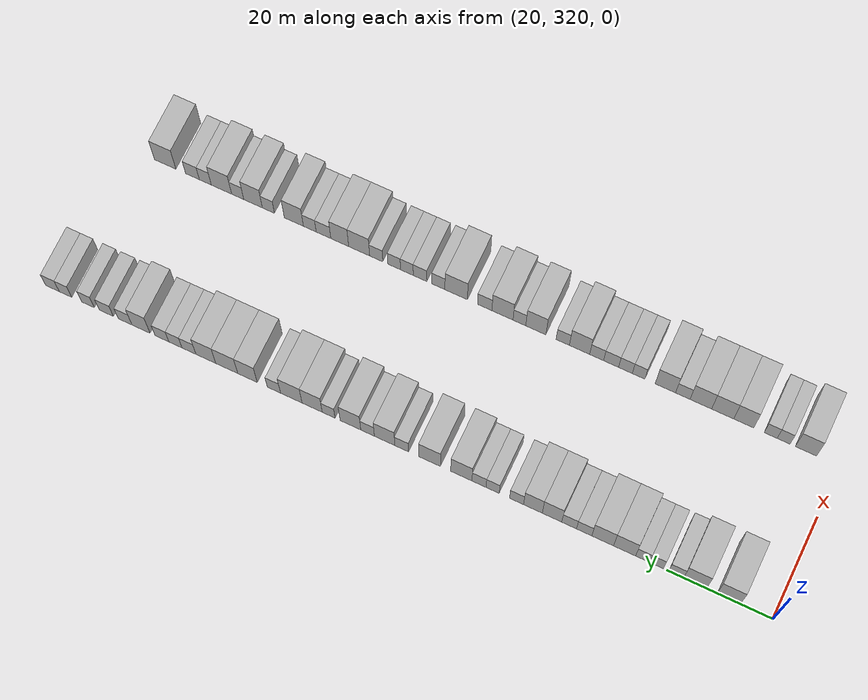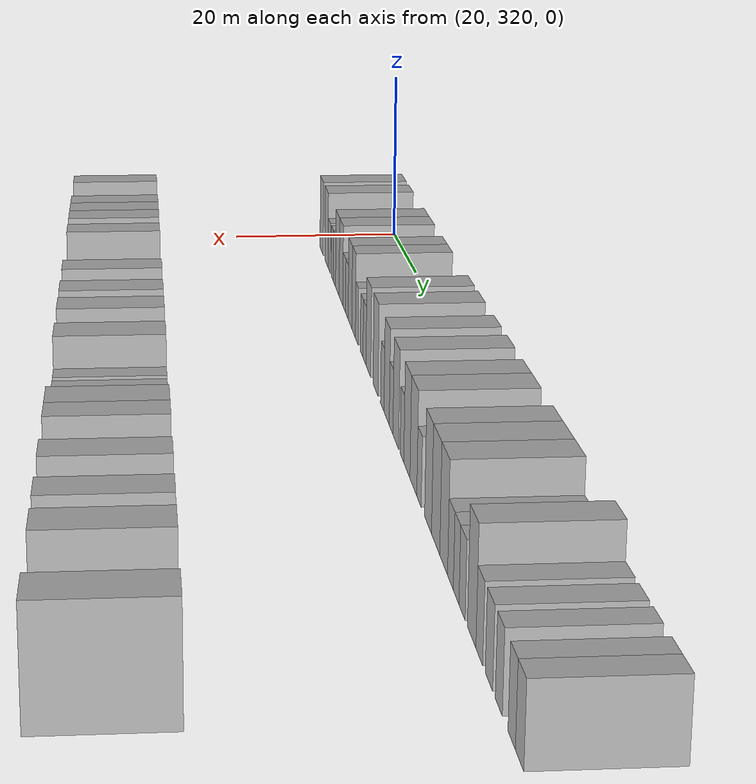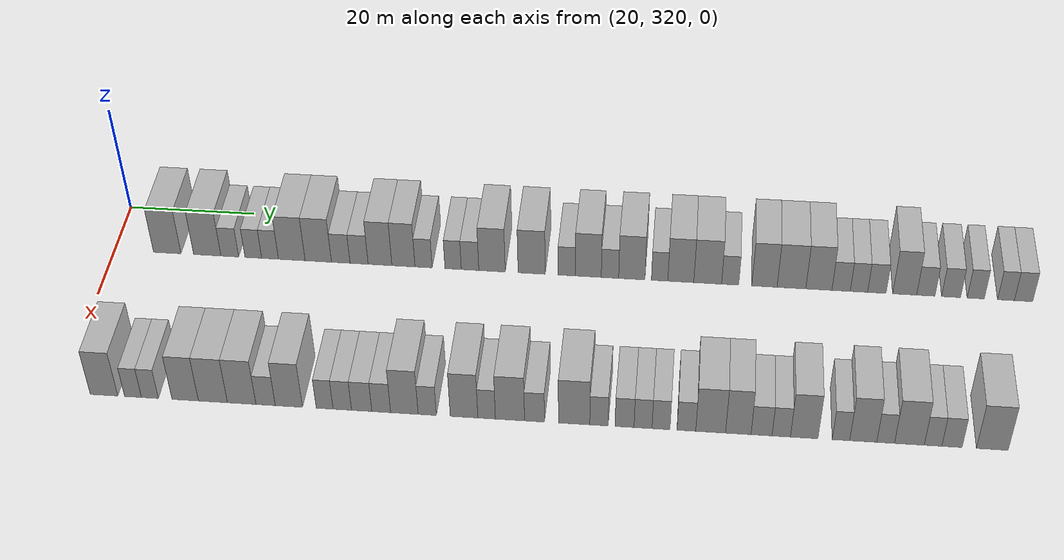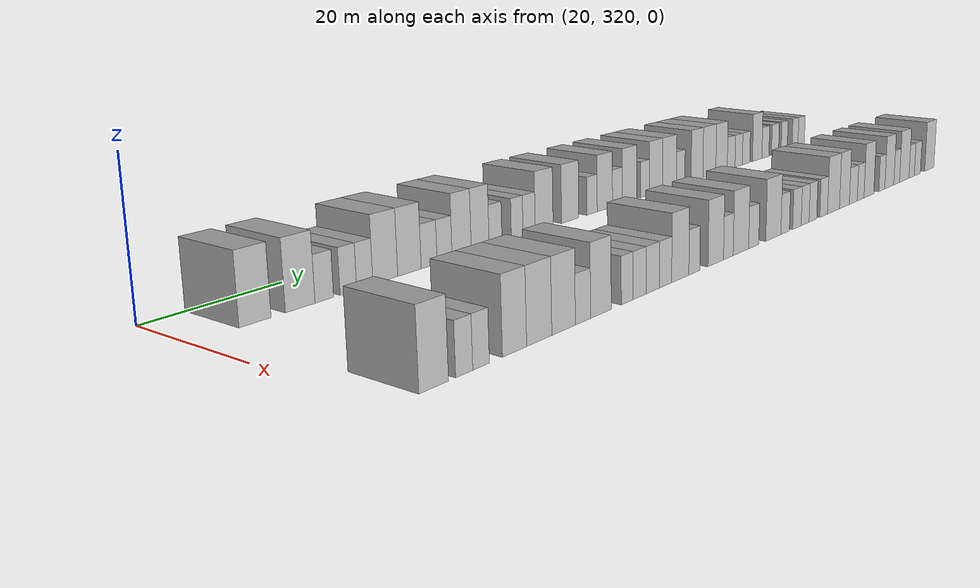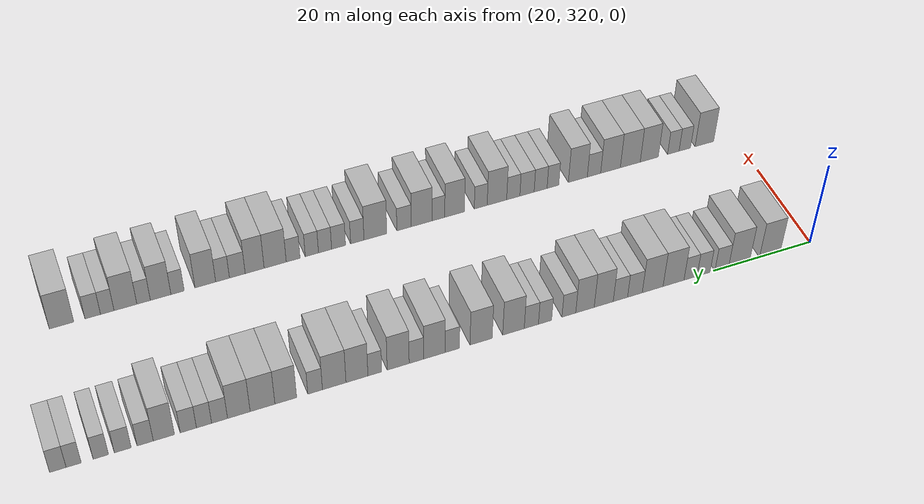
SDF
<sdf version="1.6">
 <world name="default">
  <model name="building_199">
   <static>1</static>
   <pose>25.0000 328.3594 0 0.000000 0.000000 0.000000</pose>
   <link name="link">
    <pose>0 0 4.50 0 0 0</pose>
    <collision name="collision"><geometry><box><size>10.0000 4.3618 9.0000</size></box></geometry></collision>
    <visual name="visual">
     <cast_shadows>0</cast_shadows>
     <geometry><box><size>10.0000 4.3618 9.0000</size></box></geometry>
     <material>
      <script>
       <uri>model://HANNAS_wall/materials/scripts</uri>
       <uri>model://HANNAS_wall/materials/textures</uri>
       <name>vrc/HANNAS_wall</name>
      </script>
     </material>
    </visual>
   </link>
  </model>
  <model name="building_200">
   <static>1</static>
   <pose>25.0000 334.7117 0 0.000000 0.000000 0.000000</pose>
   <link name="link">
    <pose>0 0 4.50 0 0 0</pose>
    <collision name="collision"><geometry><box><size>10.0000 4.3428 9.0000</size></box></geometry></collision>
    <visual name="visual">
     <cast_shadows>0</cast_shadows>
     <geometry><box><size>10.0000 4.3428 9.0000</size></box></geometry>
     <material>
      <script>
       <uri>model://HANNAS_wall/materials/scripts</uri>
       <uri>model://HANNAS_wall/materials/textures</uri>
       <name>vrc/HANNAS_wall</name>
      </script>
     </material>
    </visual>
   </link>
  </model>
  <model name="building_201">
   <static>1</static>
   <pose>25.0000 338.2919 0 0.000000 0.000000 0.000000</pose>
   <link name="link">
    <pose>0 0 3.00 0 0 0</pose>
    <collision name="collision"><geometry><box><size>10.0000 2.8176 6.0000</size></box></geometry></collision>
    <visual name="visual">
     <cast_shadows>0</cast_shadows>
     <geometry><box><size>10.0000 2.8176 6.0000</size></box></geometry>
     <material>
      <script>
       <uri>model://HANNAS_wall/materials/scripts</uri>
       <uri>model://HANNAS_wall/materials/textures</uri>
       <name>vrc/HANNAS_wall</name>
      </script>
     </material>
    </visual>
   </link>
  </model>
  <model name="building_202">
   <static>1</static>
   <pose>25.0000 342.0193 0 0.000000 0.000000 0.000000</pose>
   <link name="link">
    <pose>0 0 3.00 0 0 0</pose>
    <collision name="collision"><geometry><box><size>10.0000 2.6372 6.0000</size></box></geometry></collision>
    <visual name="visual">
     <cast_shadows>0</cast_shadows>
     <geometry><box><size>10.0000 2.6372 6.0000</size></box></geometry>
     <material>
      <script>
       <uri>model://HANNAS_wall/materials/scripts</uri>
       <uri>model://HANNAS_wall/materials/textures</uri>
       <name>vrc/HANNAS_wall</name>
      </script>
     </material>
    </visual>
   </link>
  </model>
  <model name="building_203">
   <static>1</static>
   <pose>25.0000 344.6592 0 0.000000 0.000000 0.000000</pose>
   <link name="link">
    <pose>0 0 3.00 0 0 0</pose>
    <collision name="collision"><geometry><box><size>10.0000 2.6426 6.0000</size></box></geometry></collision>
    <visual name="visual">
     <cast_shadows>0</cast_shadows>
     <geometry><box><size>10.0000 2.6426 6.0000</size></box></geometry>
     <material>
      <script>
       <uri>model://HANNAS_wall/materials/scripts</uri>
       <uri>model://HANNAS_wall/materials/textures</uri>
       <name>vrc/HANNAS_wall</name>
      </script>
     </material>
    </visual>
   </link>
  </model>
  <model name="building_204">
   <static>1</static>
   <pose>25.0000 348.0831 0 0.000000 0.000000 0.000000</pose>
   <link name="link">
    <pose>0 0 4.50 0 0 0</pose>
    <collision name="collision"><geometry><box><size>10.0000 4.2052 9.0000</size></box></geometry></collision>
    <visual name="visual">
     <cast_shadows>0</cast_shadows>
     <geometry><box><size>10.0000 4.2052 9.0000</size></box></geometry>
     <material>
      <script>
       <uri>model://HANNAS_wall/materials/scripts</uri>
       <uri>model://HANNAS_wall/materials/textures</uri>
       <name>vrc/HANNAS_wall</name>
      </script>
     </material>
    </visual>
   </link>
  </model>
  <model name="building_205">
   <static>1</static>
   <pose>25.0000 352.2639 0 0.000000 0.000000 0.000000</pose>
   <link name="link">
    <pose>0 0 4.50 0 0 0</pose>
    <collision name="collision"><geometry><box><size>10.0000 4.1564 9.0000</size></box></geometry></collision>
    <visual name="visual">
     <cast_shadows>0</cast_shadows>
     <geometry><box><size>10.0000 4.1564 9.0000</size></box></geometry>
     <material>
      <script>
       <uri>model://HANNAS_wall/materials/scripts</uri>
       <uri>model://HANNAS_wall/materials/textures</uri>
       <name>vrc/HANNAS_wall</name>
      </script>
     </material>
    </visual>
   </link>
  </model>
  <model name="building_206">
   <static>1</static>
   <pose>25.0000 355.8007 0 0.000000 0.000000 0.000000</pose>
   <link name="link">
    <pose>0 0 3.00 0 0 0</pose>
    <collision name="collision"><geometry><box><size>10.0000 2.9171 6.0000</size></box></geometry></collision>
    <visual name="visual">
     <cast_shadows>0</cast_shadows>
     <geometry><box><size>10.0000 2.9171 6.0000</size></box></geometry>
     <material>
      <script>
       <uri>model://HANNAS_wall/materials/scripts</uri>
       <uri>model://HANNAS_wall/materials/textures</uri>
       <name>vrc/HANNAS_wall</name>
      </script>
     </material>
    </visual>
   </link>
  </model>
  <model name="building_207">
   <static>1</static>
   <pose>25.0000 358.6803 0 0.000000 0.000000 0.000000</pose>
   <link name="link">
    <pose>0 0 3.00 0 0 0</pose>
    <collision name="collision"><geometry><box><size>10.0000 2.8420 6.0000</size></box></geometry></collision>
    <visual name="visual">
     <cast_shadows>0</cast_shadows>
     <geometry><box><size>10.0000 2.8420 6.0000</size></box></geometry>
     <material>
      <script>
       <uri>model://HANNAS_wall/materials/scripts</uri>
       <uri>model://HANNAS_wall/materials/textures</uri>
       <name>vrc/HANNAS_wall</name>
      </script>
     </material>
    </visual>
   </link>
  </model>
  <model name="building_208">
   <static>1</static>
   <pose>25.0000 361.9708 0 0.000000 0.000000 0.000000</pose>
   <link name="link">
    <pose>0 0 4.50 0 0 0</pose>
    <collision name="collision"><geometry><box><size>10.0000 3.7390 9.0000</size></box></geometry></collision>
    <visual name="visual">
     <cast_shadows>0</cast_shadows>
     <geometry><box><size>10.0000 3.7390 9.0000</size></box></geometry>
     <material>
      <script>
       <uri>model://HANNAS_wall/materials/scripts</uri>
       <uri>model://HANNAS_wall/materials/textures</uri>
       <name>vrc/HANNAS_wall</name>
      </script>
     </material>
    </visual>
   </link>
  </model>
  <model name="building_209">
   <static>1</static>
   <pose>25.0000 365.6481 0 0.000000 0.000000 0.000000</pose>
   <link name="link">
    <pose>0 0 4.50 0 0 0</pose>
    <collision name="collision"><geometry><box><size>10.0000 3.6157 9.0000</size></box></geometry></collision>
    <visual name="visual">
     <cast_shadows>0</cast_shadows>
     <geometry><box><size>10.0000 3.6157 9.0000</size></box></geometry>
     <material>
      <script>
       <uri>model://HANNAS_wall/materials/scripts</uri>
       <uri>model://HANNAS_wall/materials/textures</uri>
       <name>vrc/HANNAS_wall</name>
      </script>
     </material>
    </visual>
   </link>
  </model>
  <model name="building_210">
   <static>1</static>
   <pose>25.0000 368.7976 0 0.000000 0.000000 0.000000</pose>
   <link name="link">
    <pose>0 0 3.00 0 0 0</pose>
    <collision name="collision"><geometry><box><size>10.0000 2.6833 6.0000</size></box></geometry></collision>
    <visual name="visual">
     <cast_shadows>0</cast_shadows>
     <geometry><box><size>10.0000 2.6833 6.0000</size></box></geometry>
     <material>
      <script>
       <uri>model://HANNAS_wall/materials/scripts</uri>
       <uri>model://HANNAS_wall/materials/textures</uri>
       <name>vrc/HANNAS_wall</name>
      </script>
     </material>
    </visual>
   </link>
  </model>
  <model name="building_211">
   <static>1</static>
   <pose>25.0000 373.4127 0 0.000000 0.000000 0.000000</pose>
   <link name="link">
    <pose>0 0 3.00 0 0 0</pose>
    <collision name="collision"><geometry><box><size>10.0000 2.5470 6.0000</size></box></geometry></collision>
    <visual name="visual">
     <cast_shadows>0</cast_shadows>
     <geometry><box><size>10.0000 2.5470 6.0000</size></box></geometry>
     <material>
      <script>
       <uri>model://HANNAS_wall/materials/scripts</uri>
       <uri>model://HANNAS_wall/materials/textures</uri>
       <name>vrc/HANNAS_wall</name>
      </script>
     </material>
    </visual>
   </link>
  </model>
  <model name="building_212">
   <static>1</static>
   <pose>25.0000 376.0516 0 0.000000 0.000000 0.000000</pose>
   <link name="link">
    <pose>0 0 3.00 0 0 0</pose>
    <collision name="collision"><geometry><box><size>10.0000 2.7308 6.0000</size></box></geometry></collision>
    <visual name="visual">
     <cast_shadows>0</cast_shadows>
     <geometry><box><size>10.0000 2.7308 6.0000</size></box></geometry>
     <material>
      <script>
       <uri>model://HANNAS_wall/materials/scripts</uri>
       <uri>model://HANNAS_wall/materials/textures</uri>
       <name>vrc/HANNAS_wall</name>
      </script>
     </material>
    </visual>
   </link>
  </model>
  <model name="building_213">
   <static>1</static>
   <pose>25.0000 379.4777 0 0.000000 0.000000 0.000000</pose>
   <link name="link">
    <pose>0 0 4.50 0 0 0</pose>
    <collision name="collision"><geometry><box><size>10.0000 4.1212 9.0000</size></box></geometry></collision>
    <visual name="visual">
     <cast_shadows>0</cast_shadows>
     <geometry><box><size>10.0000 4.1212 9.0000</size></box></geometry>
     <material>
      <script>
       <uri>model://HANNAS_wall/materials/scripts</uri>
       <uri>model://HANNAS_wall/materials/textures</uri>
       <name>vrc/HANNAS_wall</name>
      </script>
     </material>
    </visual>
   </link>
  </model>
  <model name="building_214">
   <static>1</static>
   <pose>25.0000 385.6432 0 0.000000 0.000000 0.000000</pose>
   <link name="link">
    <pose>0 0 4.50 0 0 0</pose>
    <collision name="collision"><geometry><box><size>10.0000 4.2098 9.0000</size></box></geometry></collision>
    <visual name="visual">
     <cast_shadows>0</cast_shadows>
     <geometry><box><size>10.0000 4.2098 9.0000</size></box></geometry>
     <material>
      <script>
       <uri>model://HANNAS_wall/materials/scripts</uri>
       <uri>model://HANNAS_wall/materials/textures</uri>
       <name>vrc/HANNAS_wall</name>
      </script>
     </material>
    </visual>
   </link>
  </model>
  <model name="building_215">
   <static>1</static>
   <pose>25.0000 391.0878 0 0.000000 0.000000 0.000000</pose>
   <link name="link">
    <pose>0 0 3.00 0 0 0</pose>
    <collision name="collision"><geometry><box><size>10.0000 2.6794 6.0000</size></box></geometry></collision>
    <visual name="visual">
     <cast_shadows>0</cast_shadows>
     <geometry><box><size>10.0000 2.6794 6.0000</size></box></geometry>
     <material>
      <script>
       <uri>model://HANNAS_wall/materials/scripts</uri>
       <uri>model://HANNAS_wall/materials/textures</uri>
       <name>vrc/HANNAS_wall</name>
      </script>
     </material>
    </visual>
   </link>
  </model>
  <model name="building_216">
   <static>1</static>
   <pose>25.0000 394.4326 0 0.000000 0.000000 0.000000</pose>
   <link name="link">
    <pose>0 0 4.50 0 0 0</pose>
    <collision name="collision"><geometry><box><size>10.0000 4.0101 9.0000</size></box></geometry></collision>
    <visual name="visual">
     <cast_shadows>0</cast_shadows>
     <geometry><box><size>10.0000 4.0101 9.0000</size></box></geometry>
     <material>
      <script>
       <uri>model://HANNAS_wall/materials/scripts</uri>
       <uri>model://HANNAS_wall/materials/textures</uri>
       <name>vrc/HANNAS_wall</name>
      </script>
     </material>
    </visual>
   </link>
  </model>
  <model name="building_217">
   <static>1</static>
   <pose>25.0000 397.7806 0 0.000000 0.000000 0.000000</pose>
   <link name="link">
    <pose>0 0 3.00 0 0 0</pose>
    <collision name="collision"><geometry><box><size>10.0000 2.6858 6.0000</size></box></geometry></collision>
    <visual name="visual">
     <cast_shadows>0</cast_shadows>
     <geometry><box><size>10.0000 2.6858 6.0000</size></box></geometry>
     <material>
      <script>
       <uri>model://HANNAS_wall/materials/scripts</uri>
       <uri>model://HANNAS_wall/materials/textures</uri>
       <name>vrc/HANNAS_wall</name>
      </script>
     </material>
    </visual>
   </link>
  </model>
  <model name="building_218">
   <static>1</static>
   <pose>25.0000 401.1509 0 0.000000 0.000000 0.000000</pose>
   <link name="link">
    <pose>0 0 4.50 0 0 0</pose>
    <collision name="collision"><geometry><box><size>10.0000 4.0549 9.0000</size></box></geometry></collision>
    <visual name="visual">
     <cast_shadows>0</cast_shadows>
     <geometry><box><size>10.0000 4.0549 9.0000</size></box></geometry>
     <material>
      <script>
       <uri>model://HANNAS_wall/materials/scripts</uri>
       <uri>model://HANNAS_wall/materials/textures</uri>
       <name>vrc/HANNAS_wall</name>
      </script>
     </material>
    </visual>
   </link>
  </model>
  <model name="building_219">
   <static>1</static>
   <pose>25.0000 405.4431 0 0.000000 0.000000 0.000000</pose>
   <link name="link">
    <pose>0 0 3.00 0 0 0</pose>
    <collision name="collision"><geometry><box><size>10.0000 2.5293 6.0000</size></box></geometry></collision>
    <visual name="visual">
     <cast_shadows>0</cast_shadows>
     <geometry><box><size>10.0000 2.5293 6.0000</size></box></geometry>
     <material>
      <script>
       <uri>model://HANNAS_wall/materials/scripts</uri>
       <uri>model://HANNAS_wall/materials/textures</uri>
       <name>vrc/HANNAS_wall</name>
      </script>
     </material>
    </visual>
   </link>
  </model>
  <model name="building_220">
   <static>1</static>
   <pose>25.0000 408.7055 0 0.000000 0.000000 0.000000</pose>
   <link name="link">
    <pose>0 0 4.50 0 0 0</pose>
    <collision name="collision"><geometry><box><size>10.0000 3.9955 9.0000</size></box></geometry></collision>
    <visual name="visual">
     <cast_shadows>0</cast_shadows>
     <geometry><box><size>10.0000 3.9955 9.0000</size></box></geometry>
     <material>
      <script>
       <uri>model://HANNAS_wall/materials/scripts</uri>
       <uri>model://HANNAS_wall/materials/textures</uri>
       <name>vrc/HANNAS_wall</name>
      </script>
     </material>
    </visual>
   </link>
  </model>
  <model name="building_221">
   <static>1</static>
   <pose>25.0000 412.8332 0 0.000000 0.000000 0.000000</pose>
   <link name="link">
    <pose>0 0 4.50 0 0 0</pose>
    <collision name="collision"><geometry><box><size>10.0000 4.2600 9.0000</size></box></geometry></collision>
    <visual name="visual">
     <cast_shadows>0</cast_shadows>
     <geometry><box><size>10.0000 4.2600 9.0000</size></box></geometry>
     <material>
      <script>
       <uri>model://HANNAS_wall/materials/scripts</uri>
       <uri>model://HANNAS_wall/materials/textures</uri>
       <name>vrc/HANNAS_wall</name>
      </script>
     </material>
    </visual>
   </link>
  </model>
  <model name="building_222">
   <static>1</static>
   <pose>25.0000 416.2811 0 0.000000 0.000000 0.000000</pose>
   <link name="link">
    <pose>0 0 3.00 0 0 0</pose>
    <collision name="collision"><geometry><box><size>10.0000 2.6356 6.0000</size></box></geometry></collision>
    <visual name="visual">
     <cast_shadows>0</cast_shadows>
     <geometry><box><size>10.0000 2.6356 6.0000</size></box></geometry>
     <material>
      <script>
       <uri>model://HANNAS_wall/materials/scripts</uri>
       <uri>model://HANNAS_wall/materials/textures</uri>
       <name>vrc/HANNAS_wall</name>
      </script>
     </material>
    </visual>
   </link>
  </model>
  <model name="building_223">
   <static>1</static>
   <pose>25.0000 421.5374 0 0.000000 0.000000 0.000000</pose>
   <link name="link">
    <pose>0 0 4.50 0 0 0</pose>
    <collision name="collision"><geometry><box><size>10.0000 3.8771 9.0000</size></box></geometry></collision>
    <visual name="visual">
     <cast_shadows>0</cast_shadows>
     <geometry><box><size>10.0000 3.8771 9.0000</size></box></geometry>
     <material>
      <script>
       <uri>model://HANNAS_wall/materials/scripts</uri>
       <uri>model://HANNAS_wall/materials/textures</uri>
       <name>vrc/HANNAS_wall</name>
      </script>
     </material>
    </visual>
   </link>
  </model>
  <model name="building_224">
   <static>1</static>
   <pose>25.0000 425.6744 0 0.000000 0.000000 0.000000</pose>
   <link name="link">
    <pose>0 0 4.50 0 0 0</pose>
    <collision name="collision"><geometry><box><size>10.0000 4.3970 9.0000</size></box></geometry></collision>
    <visual name="visual">
     <cast_shadows>0</cast_shadows>
     <geometry><box><size>10.0000 4.3970 9.0000</size></box></geometry>
     <material>
      <script>
       <uri>model://HANNAS_wall/materials/scripts</uri>
       <uri>model://HANNAS_wall/materials/textures</uri>
       <name>vrc/HANNAS_wall</name>
      </script>
     </material>
    </visual>
   </link>
  </model>
  <model name="building_225">
   <static>1</static>
   <pose>25.0000 429.8629 0 0.000000 0.000000 0.000000</pose>
   <link name="link">
    <pose>0 0 4.50 0 0 0</pose>
    <collision name="collision"><geometry><box><size>10.0000 3.9799 9.0000</size></box></geometry></collision>
    <visual name="visual">
     <cast_shadows>0</cast_shadows>
     <geometry><box><size>10.0000 3.9799 9.0000</size></box></geometry>
     <material>
      <script>
       <uri>model://HANNAS_wall/materials/scripts</uri>
       <uri>model://HANNAS_wall/materials/textures</uri>
       <name>vrc/HANNAS_wall</name>
      </script>
     </material>
    </visual>
   </link>
  </model>
  <model name="building_226">
   <static>1</static>
   <pose>25.0000 433.2472 0 0.000000 0.000000 0.000000</pose>
   <link name="link">
    <pose>0 0 3.00 0 0 0</pose>
    <collision name="collision"><geometry><box><size>10.0000 2.7886 6.0000</size></box></geometry></collision>
    <visual name="visual">
     <cast_shadows>0</cast_shadows>
     <geometry><box><size>10.0000 2.7886 6.0000</size></box></geometry>
     <material>
      <script>
       <uri>model://HANNAS_wall/materials/scripts</uri>
       <uri>model://HANNAS_wall/materials/textures</uri>
       <name>vrc/HANNAS_wall</name>
      </script>
     </material>
    </visual>
   </link>
  </model>
  <model name="building_227">
   <static>1</static>
   <pose>25.0000 435.9618 0 0.000000 0.000000 0.000000</pose>
   <link name="link">
    <pose>0 0 3.00 0 0 0</pose>
    <collision name="collision"><geometry><box><size>10.0000 2.6405 6.0000</size></box></geometry></collision>
    <visual name="visual">
     <cast_shadows>0</cast_shadows>
     <geometry><box><size>10.0000 2.6405 6.0000</size></box></geometry>
     <material>
      <script>
       <uri>model://HANNAS_wall/materials/scripts</uri>
       <uri>model://HANNAS_wall/materials/textures</uri>
       <name>vrc/HANNAS_wall</name>
      </script>
     </material>
    </visual>
   </link>
  </model>
  <model name="building_228">
   <static>1</static>
   <pose>25.0000 438.6844 0 0.000000 0.000000 0.000000</pose>
   <link name="link">
    <pose>0 0 3.00 0 0 0</pose>
    <collision name="collision"><geometry><box><size>10.0000 2.8048 6.0000</size></box></geometry></collision>
    <visual name="visual">
     <cast_shadows>0</cast_shadows>
     <geometry><box><size>10.0000 2.8048 6.0000</size></box></geometry>
     <material>
      <script>
       <uri>model://HANNAS_wall/materials/scripts</uri>
       <uri>model://HANNAS_wall/materials/textures</uri>
       <name>vrc/HANNAS_wall</name>
      </script>
     </material>
    </visual>
   </link>
  </model>
  <model name="building_229">
   <static>1</static>
   <pose>25.0000 442.9089 0 0.000000 0.000000 0.000000</pose>
   <link name="link">
    <pose>0 0 4.50 0 0 0</pose>
    <collision name="collision"><geometry><box><size>10.0000 3.6442 9.0000</size></box></geometry></collision>
    <visual name="visual">
     <cast_shadows>0</cast_shadows>
     <geometry><box><size>10.0000 3.6442 9.0000</size></box></geometry>
     <material>
      <script>
       <uri>model://HANNAS_wall/materials/scripts</uri>
       <uri>model://HANNAS_wall/materials/textures</uri>
       <name>vrc/HANNAS_wall</name>
      </script>
     </material>
    </visual>
   </link>
  </model>
  <model name="building_230">
   <static>1</static>
   <pose>25.0000 446.1191 0 0.000000 0.000000 0.000000</pose>
   <link name="link">
    <pose>0 0 3.00 0 0 0</pose>
    <collision name="collision"><geometry><box><size>10.0000 2.7762 6.0000</size></box></geometry></collision>
    <visual name="visual">
     <cast_shadows>0</cast_shadows>
     <geometry><box><size>10.0000 2.7762 6.0000</size></box></geometry>
     <material>
      <script>
       <uri>model://HANNAS_wall/materials/scripts</uri>
       <uri>model://HANNAS_wall/materials/textures</uri>
       <name>vrc/HANNAS_wall</name>
      </script>
     </material>
    </visual>
   </link>
  </model>
  <model name="building_231">
   <static>1</static>
   <pose>25.0000 449.9417 0 0.000000 0.000000 0.000000</pose>
   <link name="link">
    <pose>0 0 3.00 0 0 0</pose>
    <collision name="collision"><geometry><box><size>10.0000 2.8690 6.0000</size></box></geometry></collision>
    <visual name="visual">
     <cast_shadows>0</cast_shadows>
     <geometry><box><size>10.0000 2.8690 6.0000</size></box></geometry>
     <material>
      <script>
       <uri>model://HANNAS_wall/materials/scripts</uri>
       <uri>model://HANNAS_wall/materials/textures</uri>
       <name>vrc/HANNAS_wall</name>
      </script>
     </material>
    </visual>
   </link>
  </model>
  <model name="building_232">
   <static>1</static>
   <pose>25.0000 453.6716 0 0.000000 0.000000 0.000000</pose>
   <link name="link">
    <pose>0 0 3.00 0 0 0</pose>
    <collision name="collision"><geometry><box><size>10.0000 2.5908 6.0000</size></box></geometry></collision>
    <visual name="visual">
     <cast_shadows>0</cast_shadows>
     <geometry><box><size>10.0000 2.5908 6.0000</size></box></geometry>
     <material>
      <script>
       <uri>model://HANNAS_wall/materials/scripts</uri>
       <uri>model://HANNAS_wall/materials/textures</uri>
       <name>vrc/HANNAS_wall</name>
      </script>
     </material>
    </visual>
   </link>
  </model>
  <model name="building_233">
   <static>1</static>
   <pose>25.0000 458.2374 0 0.000000 0.000000 0.000000</pose>
   <link name="link">
    <pose>0 0 3.00 0 0 0</pose>
    <collision name="collision"><geometry><box><size>10.0000 2.5408 6.0000</size></box></geometry></collision>
    <visual name="visual">
     <cast_shadows>0</cast_shadows>
     <geometry><box><size>10.0000 2.5408 6.0000</size></box></geometry>
     <material>
      <script>
       <uri>model://HANNAS_wall/materials/scripts</uri>
       <uri>model://HANNAS_wall/materials/textures</uri>
       <name>vrc/HANNAS_wall</name>
      </script>
     </material>
    </visual>
   </link>
  </model>
  <model name="building_234">
   <static>1</static>
   <pose>25.0000 460.8903 0 0.000000 0.000000 0.000000</pose>
   <link name="link">
    <pose>0 0 3.00 0 0 0</pose>
    <collision name="collision"><geometry><box><size>10.0000 2.7650 6.0000</size></box></geometry></collision>
    <visual name="visual">
     <cast_shadows>0</cast_shadows>
     <geometry><box><size>10.0000 2.7650 6.0000</size></box></geometry>
     <material>
      <script>
       <uri>model://HANNAS_wall/materials/scripts</uri>
       <uri>model://HANNAS_wall/materials/textures</uri>
       <name>vrc/HANNAS_wall</name>
      </script>
     </material>
    </visual>
   </link>
  </model>
  <model name="building_435">
   <static>1</static>
   <pose>55.0000 326.3586 0 0.000000 0.000000 0.000000</pose>
   <link name="link">
    <pose>0 0 4.50 0 0 0</pose>
    <collision name="collision"><geometry><box><size>10.0000 4.0511 9.0000</size></box></geometry></collision>
    <visual name="visual">
     <cast_shadows>0</cast_shadows>
     <geometry><box><size>10.0000 4.0511 9.0000</size></box></geometry>
     <material>
      <script>
       <uri>model://HANNAS_wall/materials/scripts</uri>
       <uri>model://HANNAS_wall/materials/textures</uri>
       <name>vrc/HANNAS_wall</name>
      </script>
     </material>
    </visual>
   </link>
  </model>
  <model name="building_436">
   <static>1</static>
   <pose>55.0000 330.6201 0 0.000000 0.000000 0.000000</pose>
   <link name="link">
    <pose>0 0 3.00 0 0 0</pose>
    <collision name="collision"><geometry><box><size>10.0000 2.4720 6.0000</size></box></geometry></collision>
    <visual name="visual">
     <cast_shadows>0</cast_shadows>
     <geometry><box><size>10.0000 2.4720 6.0000</size></box></geometry>
     <material>
      <script>
       <uri>model://HANNAS_wall/materials/scripts</uri>
       <uri>model://HANNAS_wall/materials/textures</uri>
       <name>vrc/HANNAS_wall</name>
      </script>
     </material>
    </visual>
   </link>
  </model>
  <model name="building_437">
   <static>1</static>
   <pose>55.0000 333.0984 0 0.000000 0.000000 0.000000</pose>
   <link name="link">
    <pose>0 0 3.00 0 0 0</pose>
    <collision name="collision"><geometry><box><size>10.0000 2.4845 6.0000</size></box></geometry></collision>
    <visual name="visual">
     <cast_shadows>0</cast_shadows>
     <geometry><box><size>10.0000 2.4845 6.0000</size></box></geometry>
     <material>
      <script>
       <uri>model://HANNAS_wall/materials/scripts</uri>
       <uri>model://HANNAS_wall/materials/textures</uri>
       <name>vrc/HANNAS_wall</name>
      </script>
     </material>
    </visual>
   </link>
  </model>
  <model name="building_438">
   <static>1</static>
   <pose>55.0000 338.2760 0 0.000000 0.000000 0.000000</pose>
   <link name="link">
    <pose>0 0 4.50 0 0 0</pose>
    <collision name="collision"><geometry><box><size>10.0000 3.8708 9.0000</size></box></geometry></collision>
    <visual name="visual">
     <cast_shadows>0</cast_shadows>
     <geometry><box><size>10.0000 3.8708 9.0000</size></box></geometry>
     <material>
      <script>
       <uri>model://HANNAS_wall/materials/scripts</uri>
       <uri>model://HANNAS_wall/materials/textures</uri>
       <name>vrc/HANNAS_wall</name>
      </script>
     </material>
    </visual>
   </link>
  </model>
  <model name="building_439">
   <static>1</static>
   <pose>55.0000 342.3318 0 0.000000 0.000000 0.000000</pose>
   <link name="link">
    <pose>0 0 4.50 0 0 0</pose>
    <collision name="collision"><geometry><box><size>10.0000 4.2407 9.0000</size></box></geometry></collision>
    <visual name="visual">
     <cast_shadows>0</cast_shadows>
     <geometry><box><size>10.0000 4.2407 9.0000</size></box></geometry>
     <material>
      <script>
       <uri>model://HANNAS_wall/materials/scripts</uri>
       <uri>model://HANNAS_wall/materials/textures</uri>
       <name>vrc/HANNAS_wall</name>
      </script>
     </material>
    </visual>
   </link>
  </model>
  <model name="building_440">
   <static>1</static>
   <pose>55.0000 346.5359 0 0.000000 0.000000 0.000000</pose>
   <link name="link">
    <pose>0 0 4.50 0 0 0</pose>
    <collision name="collision"><geometry><box><size>10.0000 4.1675 9.0000</size></box></geometry></collision>
    <visual name="visual">
     <cast_shadows>0</cast_shadows>
     <geometry><box><size>10.0000 4.1675 9.0000</size></box></geometry>
     <material>
      <script>
       <uri>model://HANNAS_wall/materials/scripts</uri>
       <uri>model://HANNAS_wall/materials/textures</uri>
       <name>vrc/HANNAS_wall</name>
      </script>
     </material>
    </visual>
   </link>
  </model>
  <model name="building_441">
   <static>1</static>
   <pose>55.0000 350.0295 0 0.000000 0.000000 0.000000</pose>
   <link name="link">
    <pose>0 0 3.00 0 0 0</pose>
    <collision name="collision"><geometry><box><size>10.0000 2.8197 6.0000</size></box></geometry></collision>
    <visual name="visual">
     <cast_shadows>0</cast_shadows>
     <geometry><box><size>10.0000 2.8197 6.0000</size></box></geometry>
     <material>
      <script>
       <uri>model://HANNAS_wall/materials/scripts</uri>
       <uri>model://HANNAS_wall/materials/textures</uri>
       <name>vrc/HANNAS_wall</name>
      </script>
     </material>
    </visual>
   </link>
  </model>
  <model name="building_442">
   <static>1</static>
   <pose>55.0000 353.4198 0 0.000000 0.000000 0.000000</pose>
   <link name="link">
    <pose>0 0 4.50 0 0 0</pose>
    <collision name="collision"><geometry><box><size>10.0000 3.9608 9.0000</size></box></geometry></collision>
    <visual name="visual">
     <cast_shadows>0</cast_shadows>
     <geometry><box><size>10.0000 3.9608 9.0000</size></box></geometry>
     <material>
      <script>
       <uri>model://HANNAS_wall/materials/scripts</uri>
       <uri>model://HANNAS_wall/materials/textures</uri>
       <name>vrc/HANNAS_wall</name>
      </script>
     </material>
    </visual>
   </link>
  </model>
  <model name="building_443">
   <static>1</static>
   <pose>55.0000 358.6188 0 0.000000 0.000000 0.000000</pose>
   <link name="link">
    <pose>0 0 3.00 0 0 0</pose>
    <collision name="collision"><geometry><box><size>10.0000 2.4372 6.0000</size></box></geometry></collision>
    <visual name="visual">
     <cast_shadows>0</cast_shadows>
     <geometry><box><size>10.0000 2.4372 6.0000</size></box></geometry>
     <material>
      <script>
       <uri>model://HANNAS_wall/materials/scripts</uri>
       <uri>model://HANNAS_wall/materials/textures</uri>
       <name>vrc/HANNAS_wall</name>
      </script>
     </material>
    </visual>
   </link>
  </model>
  <model name="building_444">
   <static>1</static>
   <pose>55.0000 361.1777 0 0.000000 0.000000 0.000000</pose>
   <link name="link">
    <pose>0 0 3.00 0 0 0</pose>
    <collision name="collision"><geometry><box><size>10.0000 2.6807 6.0000</size></box></geometry></collision>
    <visual name="visual">
     <cast_shadows>0</cast_shadows>
     <geometry><box><size>10.0000 2.6807 6.0000</size></box></geometry>
     <material>
      <script>
       <uri>model://HANNAS_wall/materials/scripts</uri>
       <uri>model://HANNAS_wall/materials/textures</uri>
       <name>vrc/HANNAS_wall</name>
      </script>
     </material>
    </visual>
   </link>
  </model>
  <model name="building_445">
   <static>1</static>
   <pose>55.0000 363.9865 0 0.000000 0.000000 0.000000</pose>
   <link name="link">
    <pose>0 0 3.00 0 0 0</pose>
    <collision name="collision"><geometry><box><size>10.0000 2.9371 6.0000</size></box></geometry></collision>
    <visual name="visual">
     <cast_shadows>0</cast_shadows>
     <geometry><box><size>10.0000 2.9371 6.0000</size></box></geometry>
     <material>
      <script>
       <uri>model://HANNAS_wall/materials/scripts</uri>
       <uri>model://HANNAS_wall/materials/textures</uri>
       <name>vrc/HANNAS_wall</name>
      </script>
     </material>
    </visual>
   </link>
  </model>
  <model name="building_446">
   <static>1</static>
   <pose>55.0000 366.8139 0 0.000000 0.000000 0.000000</pose>
   <link name="link">
    <pose>0 0 3.00 0 0 0</pose>
    <collision name="collision"><geometry><box><size>10.0000 2.7177 6.0000</size></box></geometry></collision>
    <visual name="visual">
     <cast_shadows>0</cast_shadows>
     <geometry><box><size>10.0000 2.7177 6.0000</size></box></geometry>
     <material>
      <script>
       <uri>model://HANNAS_wall/materials/scripts</uri>
       <uri>model://HANNAS_wall/materials/textures</uri>
       <name>vrc/HANNAS_wall</name>
      </script>
     </material>
    </visual>
   </link>
  </model>
  <model name="building_447">
   <static>1</static>
   <pose>55.0000 370.1614 0 0.000000 0.000000 0.000000</pose>
   <link name="link">
    <pose>0 0 4.50 0 0 0</pose>
    <collision name="collision"><geometry><box><size>10.0000 3.9772 9.0000</size></box></geometry></collision>
    <visual name="visual">
     <cast_shadows>0</cast_shadows>
     <geometry><box><size>10.0000 3.9772 9.0000</size></box></geometry>
     <material>
      <script>
       <uri>model://HANNAS_wall/materials/scripts</uri>
       <uri>model://HANNAS_wall/materials/textures</uri>
       <name>vrc/HANNAS_wall</name>
      </script>
     </material>
    </visual>
   </link>
  </model>
  <model name="building_448">
   <static>1</static>
   <pose>55.0000 373.4641 0 0.000000 0.000000 0.000000</pose>
   <link name="link">
    <pose>0 0 3.00 0 0 0</pose>
    <collision name="collision"><geometry><box><size>10.0000 2.6283 6.0000</size></box></geometry></collision>
    <visual name="visual">
     <cast_shadows>0</cast_shadows>
     <geometry><box><size>10.0000 2.6283 6.0000</size></box></geometry>
     <material>
      <script>
       <uri>model://HANNAS_wall/materials/scripts</uri>
       <uri>model://HANNAS_wall/materials/textures</uri>
       <name>vrc/HANNAS_wall</name>
      </script>
     </material>
    </visual>
   </link>
  </model>
  <model name="building_449">
   <static>1</static>
   <pose>55.0000 378.7609 0 0.000000 0.000000 0.000000</pose>
   <link name="link">
    <pose>0 0 4.50 0 0 0</pose>
    <collision name="collision"><geometry><box><size>10.0000 3.9651 9.0000</size></box></geometry></collision>
    <visual name="visual">
     <cast_shadows>0</cast_shadows>
     <geometry><box><size>10.0000 3.9651 9.0000</size></box></geometry>
     <material>
      <script>
       <uri>model://HANNAS_wall/materials/scripts</uri>
       <uri>model://HANNAS_wall/materials/textures</uri>
       <name>vrc/HANNAS_wall</name>
      </script>
     </material>
    </visual>
   </link>
  </model>
  <model name="building_450">
   <static>1</static>
   <pose>55.0000 382.0050 0 0.000000 0.000000 0.000000</pose>
   <link name="link">
    <pose>0 0 3.00 0 0 0</pose>
    <collision name="collision"><geometry><box><size>10.0000 2.5231 6.0000</size></box></geometry></collision>
    <visual name="visual">
     <cast_shadows>0</cast_shadows>
     <geometry><box><size>10.0000 2.5231 6.0000</size></box></geometry>
     <material>
      <script>
       <uri>model://HANNAS_wall/materials/scripts</uri>
       <uri>model://HANNAS_wall/materials/textures</uri>
       <name>vrc/HANNAS_wall</name>
      </script>
     </material>
    </visual>
   </link>
  </model>
  <model name="building_451">
   <static>1</static>
   <pose>55.0000 385.3568 0 0.000000 0.000000 0.000000</pose>
   <link name="link">
    <pose>0 0 4.50 0 0 0</pose>
    <collision name="collision"><geometry><box><size>10.0000 4.1806 9.0000</size></box></geometry></collision>
    <visual name="visual">
     <cast_shadows>0</cast_shadows>
     <geometry><box><size>10.0000 4.1806 9.0000</size></box></geometry>
     <material>
      <script>
       <uri>model://HANNAS_wall/materials/scripts</uri>
       <uri>model://HANNAS_wall/materials/textures</uri>
       <name>vrc/HANNAS_wall</name>
      </script>
     </material>
    </visual>
   </link>
  </model>
  <model name="building_452">
   <static>1</static>
   <pose>55.0000 388.8732 0 0.000000 0.000000 0.000000</pose>
   <link name="link">
    <pose>0 0 3.00 0 0 0</pose>
    <collision name="collision"><geometry><box><size>10.0000 2.8522 6.0000</size></box></geometry></collision>
    <visual name="visual">
     <cast_shadows>0</cast_shadows>
     <geometry><box><size>10.0000 2.8522 6.0000</size></box></geometry>
     <material>
      <script>
       <uri>model://HANNAS_wall/materials/scripts</uri>
       <uri>model://HANNAS_wall/materials/textures</uri>
       <name>vrc/HANNAS_wall</name>
      </script>
     </material>
    </visual>
   </link>
  </model>
  <model name="building_453">
   <static>1</static>
   <pose>55.0000 394.5383 0 0.000000 0.000000 0.000000</pose>
   <link name="link">
    <pose>0 0 4.50 0 0 0</pose>
    <collision name="collision"><geometry><box><size>10.0000 4.4781 9.0000</size></box></geometry></collision>
    <visual name="visual">
     <cast_shadows>0</cast_shadows>
     <geometry><box><size>10.0000 4.4781 9.0000</size></box></geometry>
     <material>
      <script>
       <uri>model://HANNAS_wall/materials/scripts</uri>
       <uri>model://HANNAS_wall/materials/textures</uri>
       <name>vrc/HANNAS_wall</name>
      </script>
     </material>
    </visual>
   </link>
  </model>
  <model name="building_454">
   <static>1</static>
   <pose>55.0000 398.0821 0 0.000000 0.000000 0.000000</pose>
   <link name="link">
    <pose>0 0 3.00 0 0 0</pose>
    <collision name="collision"><geometry><box><size>10.0000 2.6096 6.0000</size></box></geometry></collision>
    <visual name="visual">
     <cast_shadows>0</cast_shadows>
     <geometry><box><size>10.0000 2.6096 6.0000</size></box></geometry>
     <material>
      <script>
       <uri>model://HANNAS_wall/materials/scripts</uri>
       <uri>model://HANNAS_wall/materials/textures</uri>
       <name>vrc/HANNAS_wall</name>
      </script>
     </material>
    </visual>
   </link>
  </model>
  <model name="building_455">
   <static>1</static>
   <pose>55.0000 401.7390 0 0.000000 0.000000 0.000000</pose>
   <link name="link">
    <pose>0 0 3.00 0 0 0</pose>
    <collision name="collision"><geometry><box><size>10.0000 2.7040 6.0000</size></box></geometry></collision>
    <visual name="visual">
     <cast_shadows>0</cast_shadows>
     <geometry><box><size>10.0000 2.7040 6.0000</size></box></geometry>
     <material>
      <script>
       <uri>model://HANNAS_wall/materials/scripts</uri>
       <uri>model://HANNAS_wall/materials/textures</uri>
       <name>vrc/HANNAS_wall</name>
      </script>
     </material>
    </visual>
   </link>
  </model>
  <model name="building_456">
   <static>1</static>
   <pose>55.0000 404.3691 0 0.000000 0.000000 0.000000</pose>
   <link name="link">
    <pose>0 0 3.00 0 0 0</pose>
    <collision name="collision"><geometry><box><size>10.0000 2.5563 6.0000</size></box></geometry></collision>
    <visual name="visual">
     <cast_shadows>0</cast_shadows>
     <geometry><box><size>10.0000 2.5563 6.0000</size></box></geometry>
     <material>
      <script>
       <uri>model://HANNAS_wall/materials/scripts</uri>
       <uri>model://HANNAS_wall/materials/textures</uri>
       <name>vrc/HANNAS_wall</name>
      </script>
     </material>
    </visual>
   </link>
  </model>
  <model name="building_457">
   <static>1</static>
   <pose>55.0000 406.9207 0 0.000000 0.000000 0.000000</pose>
   <link name="link">
    <pose>0 0 3.00 0 0 0</pose>
    <collision name="collision"><geometry><box><size>10.0000 2.5469 6.0000</size></box></geometry></collision>
    <visual name="visual">
     <cast_shadows>0</cast_shadows>
     <geometry><box><size>10.0000 2.5469 6.0000</size></box></geometry>
     <material>
      <script>
       <uri>model://HANNAS_wall/materials/scripts</uri>
       <uri>model://HANNAS_wall/materials/textures</uri>
       <name>vrc/HANNAS_wall</name>
      </script>
     </material>
    </visual>
   </link>
  </model>
  <model name="building_458">
   <static>1</static>
   <pose>55.0000 410.5211 0 0.000000 0.000000 0.000000</pose>
   <link name="link">
    <pose>0 0 3.00 0 0 0</pose>
    <collision name="collision"><geometry><box><size>10.0000 2.6539 6.0000</size></box></geometry></collision>
    <visual name="visual">
     <cast_shadows>0</cast_shadows>
     <geometry><box><size>10.0000 2.6539 6.0000</size></box></geometry>
     <material>
      <script>
       <uri>model://HANNAS_wall/materials/scripts</uri>
       <uri>model://HANNAS_wall/materials/textures</uri>
       <name>vrc/HANNAS_wall</name>
      </script>
     </material>
    </visual>
   </link>
  </model>
  <model name="building_459">
   <static>1</static>
   <pose>55.0000 413.9593 0 0.000000 0.000000 0.000000</pose>
   <link name="link">
    <pose>0 0 4.50 0 0 0</pose>
    <collision name="collision"><geometry><box><size>10.0000 4.2225 9.0000</size></box></geometry></collision>
    <visual name="visual">
     <cast_shadows>0</cast_shadows>
     <geometry><box><size>10.0000 4.2225 9.0000</size></box></geometry>
     <material>
      <script>
       <uri>model://HANNAS_wall/materials/scripts</uri>
       <uri>model://HANNAS_wall/materials/textures</uri>
       <name>vrc/HANNAS_wall</name>
      </script>
     </material>
    </visual>
   </link>
  </model>
  <model name="building_460">
   <static>1</static>
   <pose>55.0000 417.8715 0 0.000000 0.000000 0.000000</pose>
   <link name="link">
    <pose>0 0 4.50 0 0 0</pose>
    <collision name="collision"><geometry><box><size>10.0000 3.6019 9.0000</size></box></geometry></collision>
    <visual name="visual">
     <cast_shadows>0</cast_shadows>
     <geometry><box><size>10.0000 3.6019 9.0000</size></box></geometry>
     <material>
      <script>
       <uri>model://HANNAS_wall/materials/scripts</uri>
       <uri>model://HANNAS_wall/materials/textures</uri>
       <name>vrc/HANNAS_wall</name>
      </script>
     </material>
    </visual>
   </link>
  </model>
  <model name="building_461">
   <static>1</static>
   <pose>55.0000 421.1573 0 0.000000 0.000000 0.000000</pose>
   <link name="link">
    <pose>0 0 3.00 0 0 0</pose>
    <collision name="collision"><geometry><box><size>10.0000 2.9698 6.0000</size></box></geometry></collision>
    <visual name="visual">
     <cast_shadows>0</cast_shadows>
     <geometry><box><size>10.0000 2.9698 6.0000</size></box></geometry>
     <material>
      <script>
       <uri>model://HANNAS_wall/materials/scripts</uri>
       <uri>model://HANNAS_wall/materials/textures</uri>
       <name>vrc/HANNAS_wall</name>
      </script>
     </material>
    </visual>
   </link>
  </model>
  <model name="building_462">
   <static>1</static>
   <pose>55.0000 423.9358 0 0.000000 0.000000 0.000000</pose>
   <link name="link">
    <pose>0 0 3.00 0 0 0</pose>
    <collision name="collision"><geometry><box><size>10.0000 2.5872 6.0000</size></box></geometry></collision>
    <visual name="visual">
     <cast_shadows>0</cast_shadows>
     <geometry><box><size>10.0000 2.5872 6.0000</size></box></geometry>
     <material>
      <script>
       <uri>model://HANNAS_wall/materials/scripts</uri>
       <uri>model://HANNAS_wall/materials/textures</uri>
       <name>vrc/HANNAS_wall</name>
      </script>
     </material>
    </visual>
   </link>
  </model>
  <model name="building_463">
   <static>1</static>
   <pose>55.0000 427.1688 0 0.000000 0.000000 0.000000</pose>
   <link name="link">
    <pose>0 0 4.50 0 0 0</pose>
    <collision name="collision"><geometry><box><size>10.0000 3.8787 9.0000</size></box></geometry></collision>
    <visual name="visual">
     <cast_shadows>0</cast_shadows>
     <geometry><box><size>10.0000 3.8787 9.0000</size></box></geometry>
     <material>
      <script>
       <uri>model://HANNAS_wall/materials/scripts</uri>
       <uri>model://HANNAS_wall/materials/textures</uri>
       <name>vrc/HANNAS_wall</name>
      </script>
     </material>
    </visual>
   </link>
  </model>
  <model name="building_464">
   <static>1</static>
   <pose>55.0000 432.3385 0 0.000000 0.000000 0.000000</pose>
   <link name="link">
    <pose>0 0 3.00 0 0 0</pose>
    <collision name="collision"><geometry><box><size>10.0000 2.4607 6.0000</size></box></geometry></collision>
    <visual name="visual">
     <cast_shadows>0</cast_shadows>
     <geometry><box><size>10.0000 2.4607 6.0000</size></box></geometry>
     <material>
      <script>
       <uri>model://HANNAS_wall/materials/scripts</uri>
       <uri>model://HANNAS_wall/materials/textures</uri>
       <name>vrc/HANNAS_wall</name>
      </script>
     </material>
    </visual>
   </link>
  </model>
  <model name="building_465">
   <static>1</static>
   <pose>55.0000 435.4674 0 0.000000 0.000000 0.000000</pose>
   <link name="link">
    <pose>0 0 4.50 0 0 0</pose>
    <collision name="collision"><geometry><box><size>10.0000 3.7972 9.0000</size></box></geometry></collision>
    <visual name="visual">
     <cast_shadows>0</cast_shadows>
     <geometry><box><size>10.0000 3.7972 9.0000</size></box></geometry>
     <material>
      <script>
       <uri>model://HANNAS_wall/materials/scripts</uri>
       <uri>model://HANNAS_wall/materials/textures</uri>
       <name>vrc/HANNAS_wall</name>
      </script>
     </material>
    </visual>
   </link>
  </model>
  <model name="building_466">
   <static>1</static>
   <pose>55.0000 438.6091 0 0.000000 0.000000 0.000000</pose>
   <link name="link">
    <pose>0 0 3.00 0 0 0</pose>
    <collision name="collision"><geometry><box><size>10.0000 2.4862 6.0000</size></box></geometry></collision>
    <visual name="visual">
     <cast_shadows>0</cast_shadows>
     <geometry><box><size>10.0000 2.4862 6.0000</size></box></geometry>
     <material>
      <script>
       <uri>model://HANNAS_wall/materials/scripts</uri>
       <uri>model://HANNAS_wall/materials/textures</uri>
       <name>vrc/HANNAS_wall</name>
      </script>
     </material>
    </visual>
   </link>
  </model>
  <model name="building_467">
   <static>1</static>
   <pose>55.0000 441.9361 0 0.000000 0.000000 0.000000</pose>
   <link name="link">
    <pose>0 0 4.50 0 0 0</pose>
    <collision name="collision"><geometry><box><size>10.0000 4.1679 9.0000</size></box></geometry></collision>
    <visual name="visual">
     <cast_shadows>0</cast_shadows>
     <geometry><box><size>10.0000 4.1679 9.0000</size></box></geometry>
     <material>
      <script>
       <uri>model://HANNAS_wall/materials/scripts</uri>
       <uri>model://HANNAS_wall/materials/textures</uri>
       <name>vrc/HANNAS_wall</name>
      </script>
     </material>
    </visual>
   </link>
  </model>
  <model name="building_468">
   <static>1</static>
   <pose>55.0000 445.2484 0 0.000000 0.000000 0.000000</pose>
   <link name="link">
    <pose>0 0 3.00 0 0 0</pose>
    <collision name="collision"><geometry><box><size>10.0000 2.4566 6.0000</size></box></geometry></collision>
    <visual name="visual">
     <cast_shadows>0</cast_shadows>
     <geometry><box><size>10.0000 2.4566 6.0000</size></box></geometry>
     <material>
      <script>
       <uri>model://HANNAS_wall/materials/scripts</uri>
       <uri>model://HANNAS_wall/materials/textures</uri>
       <name>vrc/HANNAS_wall</name>
      </script>
     </material>
    </visual>
   </link>
  </model>
  <model name="building_469">
   <static>1</static>
   <pose>55.0000 447.8867 0 0.000000 0.000000 0.000000</pose>
   <link name="link">
    <pose>0 0 3.00 0 0 0</pose>
    <collision name="collision"><geometry><box><size>10.0000 2.8199 6.0000</size></box></geometry></collision>
    <visual name="visual">
     <cast_shadows>0</cast_shadows>
     <geometry><box><size>10.0000 2.8199 6.0000</size></box></geometry>
     <material>
      <script>
       <uri>model://HANNAS_wall/materials/scripts</uri>
       <uri>model://HANNAS_wall/materials/textures</uri>
       <name>vrc/HANNAS_wall</name>
      </script>
     </material>
    </visual>
   </link>
  </model>
  <model name="building_470">
   <static>1</static>
   <pose>55.0000 453.5055 0 0.000000 0.000000 0.000000</pose>
   <link name="link">
    <pose>0 0 4.50 0 0 0</pose>
    <collision name="collision"><geometry><box><size>10.0000 4.4177 9.0000</size></box></geometry></collision>
    <visual name="visual">
     <cast_shadows>0</cast_shadows>
     <geometry><box><size>10.0000 4.4177 9.0000</size></box></geometry>
     <material>
      <script>
       <uri>model://HANNAS_wall/materials/scripts</uri>
       <uri>model://HANNAS_wall/materials/textures</uri>
       <name>vrc/HANNAS_wall</name>
      </script>
     </material>
    </visual>
   </link>
  </model>
 </world>
</sdf>
